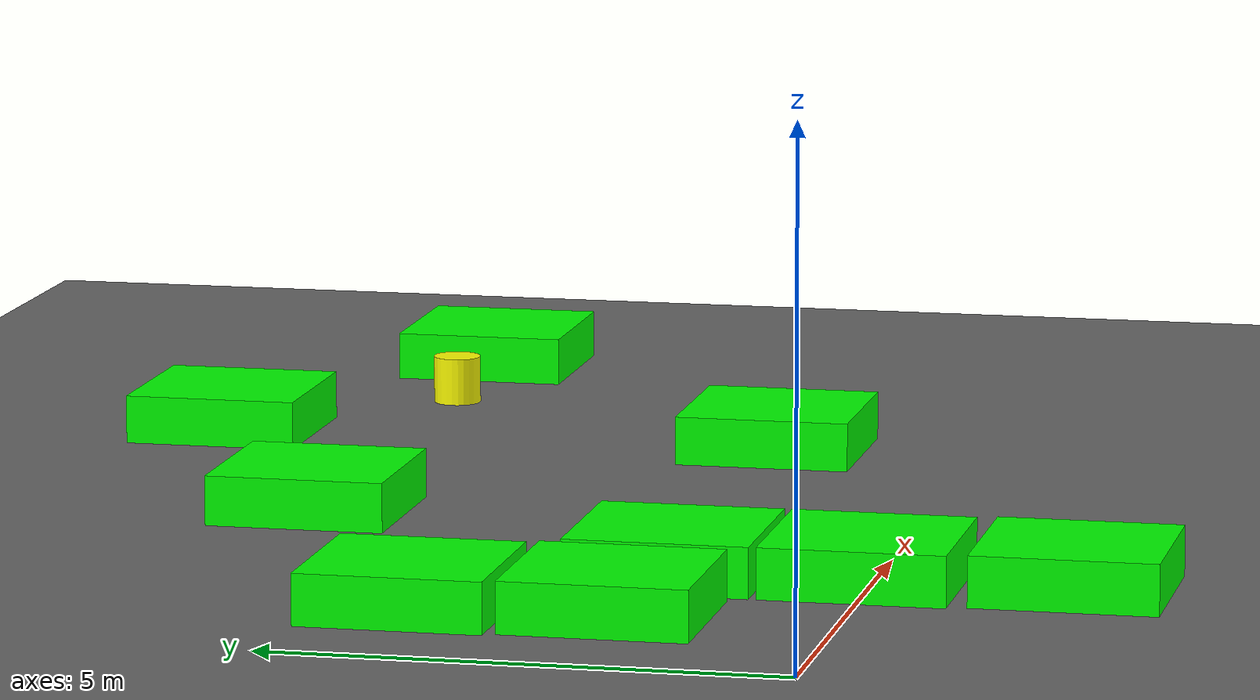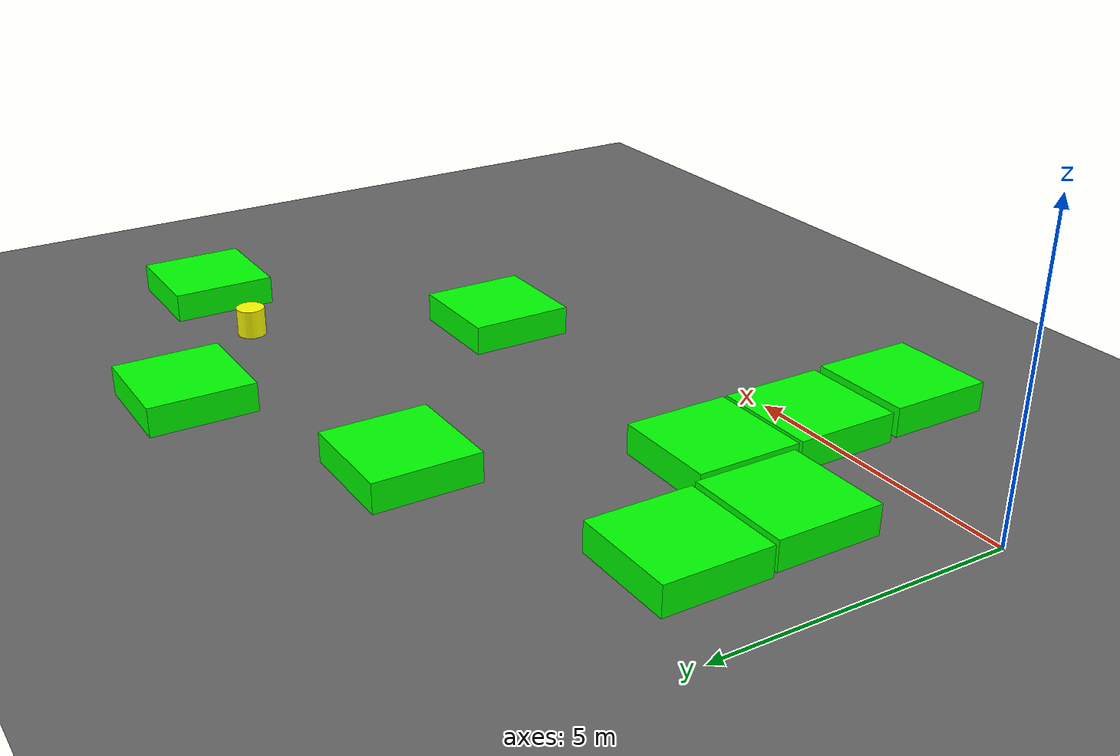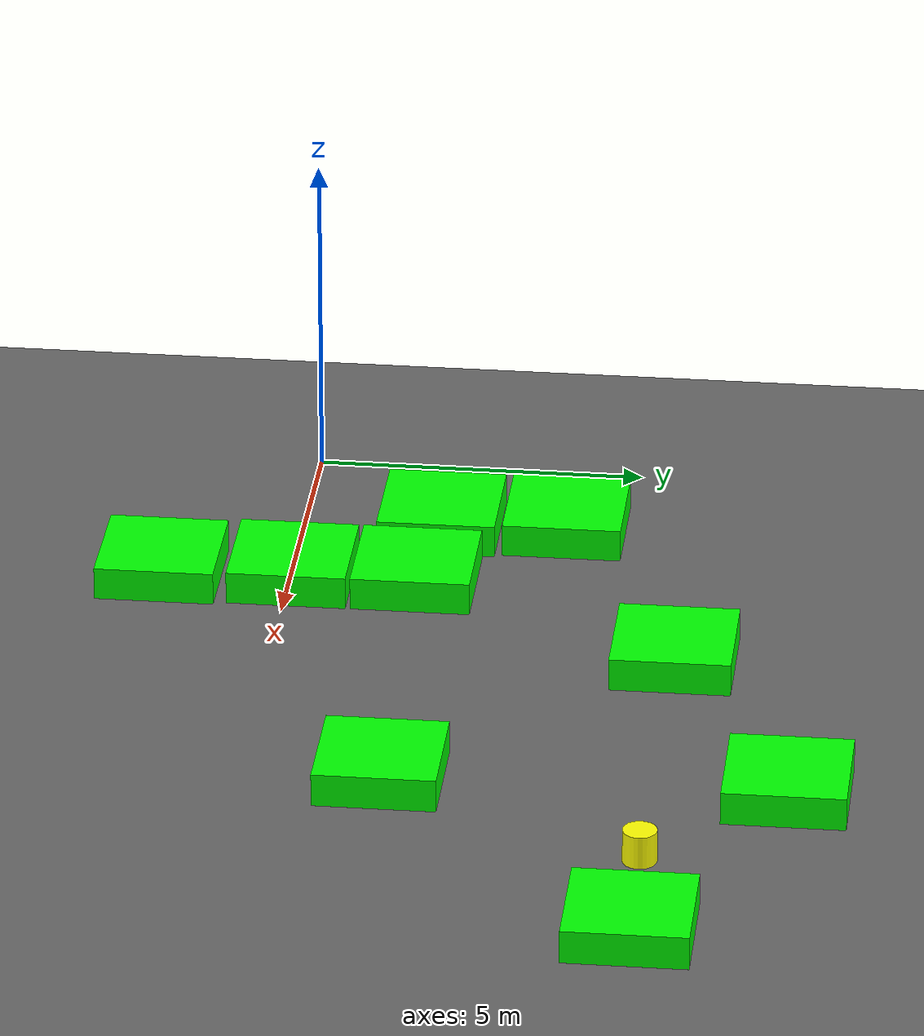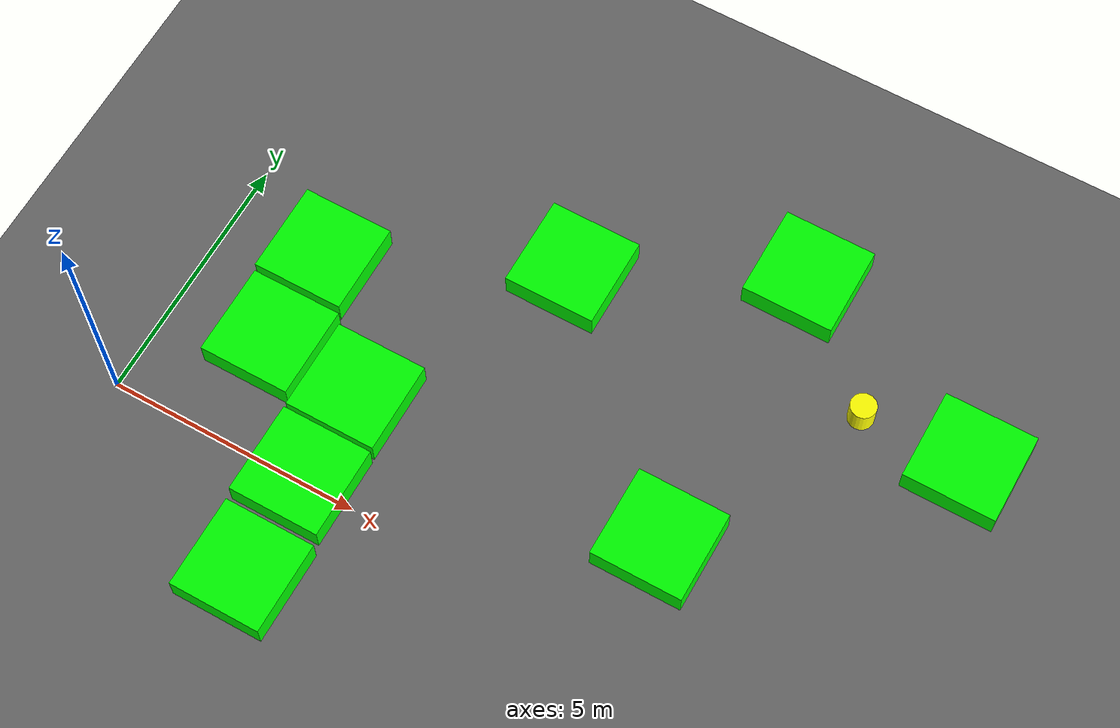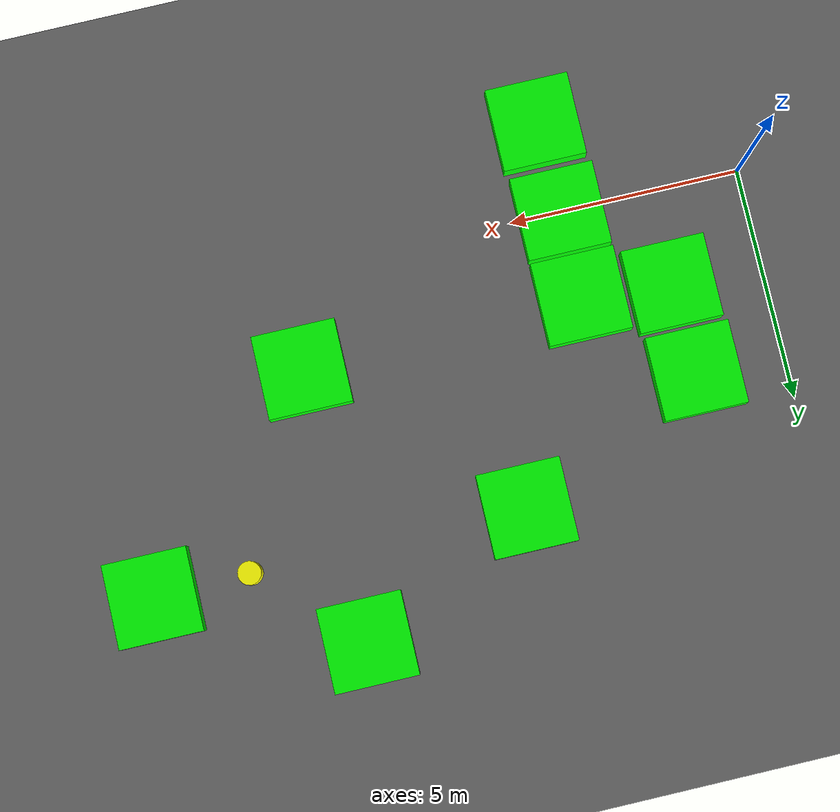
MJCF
<mujoco model="randommix_005_lvl0_standard_obs9_d2mid_seed1058">
    <compiler angle="degree" coordinate="local" inertiafromgeom="true"/>
    <option integrator="RK4" timestep="0.01"/>

    <asset>
        <texture builtin="gradient" height="100" rgb1="0.6 0.8 1" rgb2="0 0 0" type="skybox" width="100"/>
        <texture name="floor_texture" type="2d" builtin="checker" width="100" height="100" rgb1="0 0 0" rgb2="0.8 0.8 0.8"/>
        <material name="MatPlane" reflectance="0.5" shininess="1" specular="1" texrepeat="10 10" texture="floor_texture"/>
    </asset>

    <!-- Excluding the contact between the agent and the goal, and the agent and the floor -->
    <contact>
        <exclude body1="agent" body2="goal"/>
        <exclude body1 = "agent" body2 = "floor"/>
    </contact>

    <extension>
        <plugin plugin = "mujoco.pid">
            <instance name = "pid1">
                <config key="kp" value="2"/>
                <config key="ki" value="0"/>
                <config key="kd" value="55"/>
            </instance>
        </plugin>
    </extension>

    <worldbody>
        <light cutoff="100" diffuse="1 1 1" dir="-0 0 -1.3" directional="true" exponent="1" pos="0 0 1.3" specular=".1 .1 .1"/>
        <body name="floor" pos="0 0 0">
            <geom name="floor_geom" type="plane" size="20 20 0.1" material="MatPlane"/>
        </body>

                <body name="goal" pos="0.0000 0.0000 0">
            <geom name="goal_geom" type="plane" size="0.5 0.5 1" pos="0 0 0" rgba="1 0 0 1"/>
        </body>

                <body name="agent" pos="12.0000 6.0000 0.250">
            <joint name="j1" type="slide" axis ="1 0 0 "/>
            <joint name="j2" type="slide" axis ="0 1 0 "/>
            <geom name="agent_geom" type="cylinder" size="0.25 0.25 0.250" rgba="1 1 0 1"/>
        </body>

        <body name="obstacle1" pos="9.9264 7.9454 0.250">  <geom name="obstacle1_geom" type="box" size="0.9000 0.9000 0.250" rgba="0 1 0 1"/></body>
        <body name="obstacle2" pos="6.0716 6.0010 0.250">  <geom name="obstacle2_geom" type="box" size="0.9000 0.9000 0.250" rgba="0 1 0 1"/></body>
        <body name="obstacle3" pos="14.0721 6.0428 0.250">  <geom name="obstacle3_geom" type="box" size="0.9000 0.9000 0.250" rgba="0 1 0 1"/></body>
        <body name="obstacle4" pos="1.9394 4.0075 0.250">  <geom name="obstacle4_geom" type="box" size="0.9000 0.9000 0.250" rgba="0 1 0 1"/></body>
        <body name="obstacle5" pos="2.0052 2.0974 0.250">  <geom name="obstacle5_geom" type="box" size="0.9000 0.9000 0.250" rgba="0 1 0 1"/></body>
        <body name="obstacle6" pos="3.9230 1.9197 0.250">  <geom name="obstacle6_geom" type="box" size="0.9000 0.9000 0.250" rgba="0 1 0 1"/></body>
        <body name="obstacle7" pos="10.0058 2.0880 0.250">  <geom name="obstacle7_geom" type="box" size="0.9000 0.9000 0.250" rgba="0 1 0 1"/></body>
        <body name="obstacle8" pos="3.9285 0.0496 0.250">  <geom name="obstacle8_geom" type="box" size="0.9000 0.9000 0.250" rgba="0 1 0 1"/></body>
        <body name="obstacle9" pos="3.9954 -1.9378 0.250">  <geom name="obstacle9_geom" type="box" size="0.9000 0.9000 0.250" rgba="0 1 0 1"/></body>

    </worldbody>

    <sensor>
<!-- SENSORS -->

        <distance name="dist1" geom1="agent_geom" geom2="obstacle1_geom" cutoff="1.5"/>
        <distance name="dist2" geom1="agent_geom" geom2="obstacle2_geom" cutoff="1.5"/>
        <distance name="dist3" geom1="agent_geom" geom2="obstacle3_geom" cutoff="1.5"/>
        <distance name="dist4" geom1="agent_geom" geom2="obstacle4_geom" cutoff="1.5"/>
        <distance name="dist5" geom1="agent_geom" geom2="obstacle5_geom" cutoff="1.5"/>
        <distance name="dist6" geom1="agent_geom" geom2="obstacle6_geom" cutoff="1.5"/>
        <distance name="dist7" geom1="agent_geom" geom2="obstacle7_geom" cutoff="1.5"/>
        <distance name="dist8" geom1="agent_geom" geom2="obstacle8_geom" cutoff="1.5"/>
        <distance name="dist9" geom1="agent_geom" geom2="obstacle9_geom" cutoff="1.5"/>
</sensor>

    <actuator>
        <plugin joint="j1" plugin="mujoco.pid" instance="pid1" />
        <plugin joint="j2" plugin="mujoco.pid" instance="pid1"/>
    </actuator>
</mujoco>
